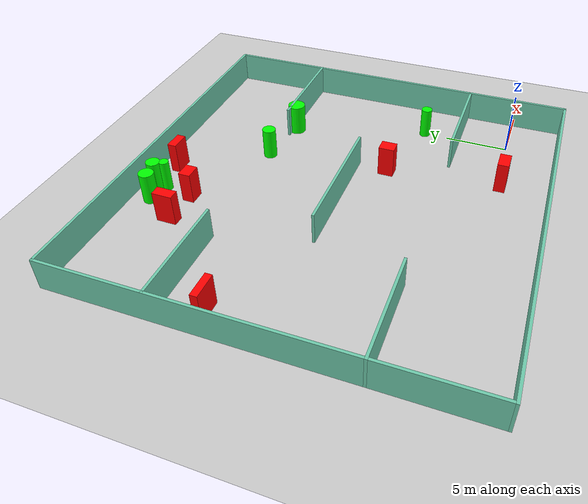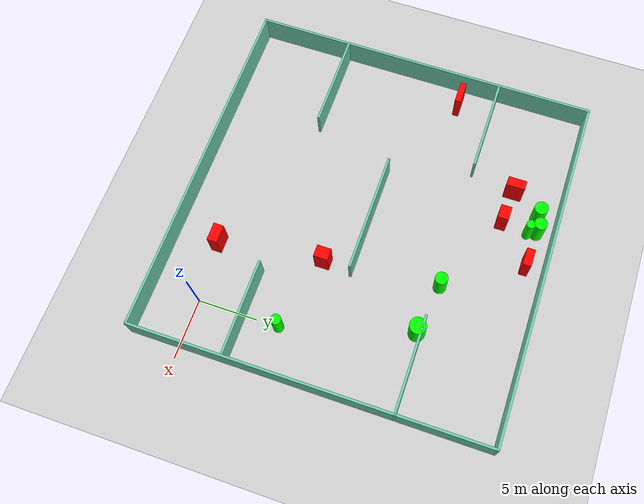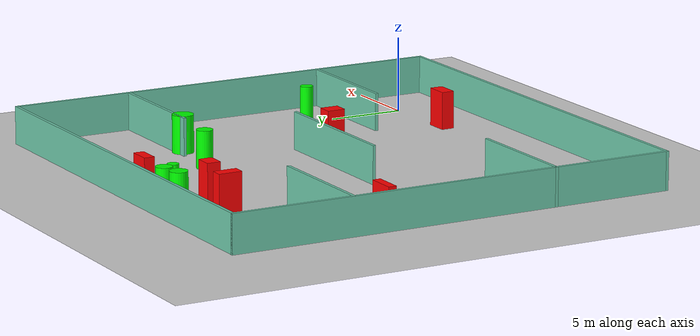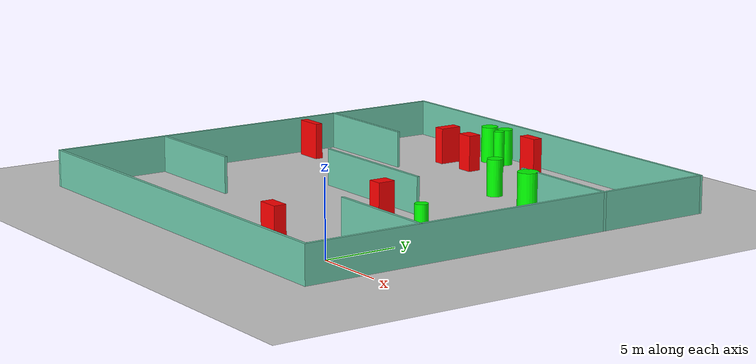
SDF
<sdf version="1.7">
 <world name="default">
  <light name="sun" type="directional">
   <pose>0 0 10 0 -0 0</pose>
   <diffuse>0.8 0.8 0.8 1</diffuse>
   <specular>0.2 0.2 0.2 1</specular>
   <attenuation>
    <range>1000</range>
    <constant>0.9</constant>
    <linear>0.01</linear>
    <quadratic>0.001</quadratic>
   </attenuation>
   <direction>-0.5 0.1 -0.9</direction>
   <spot><inner_angle>0</inner_angle><outer_angle>0</outer_angle><falloff>0</falloff></spot>
  </light>
  <model name="ground_plane">
   <static>1</static>
   <link name="link">
    <collision name="collision">
     <geometry><plane><normal>0 0 1</normal><size>100 100</size></plane></geometry>
     <surface>
      <contact><collide_bitmask>65535</collide_bitmask></contact>
      <friction><ode><mu>100</mu><mu2>50</mu2></ode></friction>
     </surface>
    </collision>
    <visual name="visual">
     <cast_shadows>0</cast_shadows>
     <geometry><plane><normal>0 0 1</normal><size>100 100</size></plane></geometry>
     <material>
      <script><uri>file://media/materials/scripts/gazebo.material</uri><name>Gazebo/Grey</name></script>
     </material>
    </visual>
   </link>
  </model>
  <gravity>0 0 -9.8</gravity>
  <magnetic_field>6e-06 2.3e-05 -4.2e-05</magnetic_field>
  <atmosphere type="adiabatic"/>
  <physics type="ode">
   <max_step_size>0.001</max_step_size>
   <real_time_factor>1</real_time_factor>
   <real_time_update_rate>1000</real_time_update_rate>
  </physics>
  <scene><ambient>0.4 0.4 0.4 1</ambient><background>0.7 0.7 0.7 1</background><shadows>1</shadows></scene>
  <spherical_coordinates>
   <surface_model>EARTH_WGS84</surface_model>
   <latitude_deg>0</latitude_deg>
   <longitude_deg>0</longitude_deg>
   <elevation>0</elevation>
   <heading_deg>0</heading_deg>
  </spherical_coordinates>
  <model name="my_base_walls">
   <link name="Wall_10">
    <collision name="Wall_10_Collision">
     <geometry><box><size>8.2 0.2 2.5</size></box></geometry>
     <pose>0 0 1.25 0 -0 0</pose>
    </collision>
    <visual name="Wall_10_Visual">
     <pose>0 0 1.25 0 -0 0</pose>
     <geometry><box><size>8.2 0.2 2.5</size></box></geometry>
     <material>
      <script><uri>file://media/materials/scripts/gazebo.material</uri><name>Gazebo/Grey</name></script>
      <ambient>0.435294 0.796078 0.67451 1</ambient>
     </material>
     <meta><layer>0</layer></meta>
    </visual>
    <pose>-11 -7 0 0 -0 0</pose>
   </link>
   <link name="Wall_12">
    <collision name="Wall_12_Collision">
     <geometry><box><size>8.2 0.2 2.5</size></box></geometry>
     <pose>0 0 1.25 0 -0 0</pose>
    </collision>
    <visual name="Wall_12_Visual">
     <pose>0 0 1.25 0 -0 0</pose>
     <geometry><box><size>8.2 0.2 2.5</size></box></geometry>
     <material>
      <script><uri>file://media/materials/scripts/gazebo.material</uri><name>Gazebo/Grey</name></script>
      <ambient>0.435294 0.796078 0.67451 1</ambient>
     </material>
     <meta><layer>0</layer></meta>
    </visual>
    <pose>-11 7 0 0 -0 0</pose>
   </link>
   <link name="Wall_14">
    <collision name="Wall_14_Collision">
     <geometry><box><size>8.2 0.2 2.5</size></box></geometry>
     <pose>0 0 1.25 0 -0 0</pose>
    </collision>
    <visual name="Wall_14_Visual">
     <pose>0 0 1.25 0 -0 0</pose>
     <geometry><box><size>8.2 0.2 2.5</size></box></geometry>
     <material>
      <script><uri>file://media/materials/scripts/gazebo.material</uri><name>Gazebo/Grey</name></script>
      <ambient>0.435294 0.796078 0.67451 1</ambient>
     </material>
     <meta><layer>0</layer></meta>
    </visual>
    <pose>11 7 0 0 -0 3.14159</pose>
   </link>
   <link name="Wall_16">
    <collision name="Wall_16_Collision">
     <geometry><box><size>10.2 0.2 2.5</size></box></geometry>
     <pose>0 0 1.25 0 -0 0</pose>
    </collision>
    <visual name="Wall_16_Visual">
     <pose>0 0 1.25 0 -0 0</pose>
     <geometry><box><size>10.2 0.2 2.5</size></box></geometry>
     <material>
      <script><uri>file://media/materials/scripts/gazebo.material</uri><name>Gazebo/Grey</name></script>
      <ambient>0.435294 0.796078 0.67451 1</ambient>
     </material>
     <meta><layer>0</layer></meta>
    </visual>
    <pose>0 0 0 0 -0 3.14159</pose>
   </link>
   <link name="Wall_2">
    <collision name="Wall_2_Collision">
     <geometry><box><size>30.2 0.2 2.5</size></box></geometry>
     <pose>0 0 1.25 0 -0 0</pose>
    </collision>
    <visual name="Wall_2_Visual">
     <pose>0 0 1.25 0 -0 0</pose>
     <geometry><box><size>30.2 0.2 2.5</size></box></geometry>
     <material>
      <script><uri>file://media/materials/scripts/gazebo.material</uri><name>Gazebo/Grey</name></script>
      <ambient>0.435294 0.796078 0.67451 1</ambient>
     </material>
     <meta><layer>0</layer></meta>
    </visual>
    <pose>0 -15 0 0 -0 3.14159</pose>
   </link>
   <link name="Wall_3">
    <collision name="Wall_3_Collision">
     <geometry><box><size>30.2 0.2 2.5</size></box></geometry>
     <pose>0 0 1.25 0 -0 0</pose>
    </collision>
    <visual name="Wall_3_Visual">
     <pose>0 0 1.25 0 -0 0</pose>
     <geometry><box><size>30.2 0.2 2.5</size></box></geometry>
     <material>
      <script><uri>file://media/materials/scripts/gazebo.material</uri><name>Gazebo/Grey</name></script>
      <ambient>0.435294 0.796078 0.67451 1</ambient>
     </material>
     <meta><layer>0</layer></meta>
    </visual>
    <pose>-15 0 0 0 -0 1.5708</pose>
   </link>
   <link name="Wall_4">
    <collision name="Wall_4_Collision">
     <geometry><box><size>30.2 0.2 2.5</size></box></geometry>
     <pose>0 0 1.25 0 -0 0</pose>
    </collision>
    <visual name="Wall_4_Visual">
     <pose>0 0 1.25 0 -0 0</pose>
     <geometry><box><size>30.2 0.2 2.5</size></box></geometry>
     <material>
      <script><uri>file://media/materials/scripts/gazebo.material</uri><name>Gazebo/Grey</name></script>
      <ambient>0.435294 0.796078 0.67451 1</ambient>
     </material>
     <meta><layer>0</layer></meta>
    </visual>
    <pose>0 15 0 0 -0 0</pose>
   </link>
   <link name="Wall_6">
    <collision name="Wall_6_Collision">
     <geometry><box><size>30.2 0.2 2.5</size></box></geometry>
     <pose>0 0 1.25 0 -0 0</pose>
    </collision>
    <visual name="Wall_6_Visual">
     <pose>0 0 1.25 0 -0 0</pose>
     <geometry><box><size>30.2 0.2 2.5</size></box></geometry>
     <material>
      <script><uri>file://media/materials/scripts/gazebo.material</uri><name>Gazebo/Grey</name></script>
      <ambient>0.435294 0.796078 0.67451 1</ambient>
     </material>
     <meta><layer>0</layer></meta>
    </visual>
    <pose>15 0 0 0 -0 1.5708</pose>
   </link>
   <link name="Wall_8">
    <collision name="Wall_8_Collision">
     <geometry><box><size>8.2 0.2 2.5</size></box></geometry>
     <pose>0 0 1.25 0 -0 0</pose>
    </collision>
    <visual name="Wall_8_Visual">
     <pose>0 0 1.25 0 -0 0</pose>
     <geometry><box><size>8.2 0.2 2.5</size></box></geometry>
     <material>
      <script><uri>file://media/materials/scripts/gazebo.material</uri><name>Gazebo/Grey</name></script>
      <ambient>0.435294 0.796078 0.67451 1</ambient>
     </material>
     <meta><layer>0</layer></meta>
    </visual>
    <pose>11 -7 0 0 -0 3.14159</pose>
   </link>
   <static>1</static>
   <pose>-11 11 0 0 -0 0</pose>
  </model>
  <model name="cylinder1">
   <static>1</static>
   <link name="link">
    <inertial>
     <mass>1</mass>
     <inertia><ixx>0.5</ixx><ixy>0</ixy><ixz>0</ixz><iyy>0.5</iyy><iyz>0</iyz><izz>1</izz></inertia>
    </inertial>
    <collision name="collision">
     <geometry><cylinder><radius>0.5349380488798134</radius><length>2.5</length></cylinder></geometry>
    </collision>
    <visual name="visual">
     <geometry><cylinder><radius>0.5349380488798134</radius><length>2.5</length></cylinder></geometry>
     <material>
      <ambient>0 1 0 1</ambient>
      <diffuse>0 1 0 1</diffuse>
      <specular>0.1 0.1 0.1 1</specular>
      <emissive>0 0 0 0</emissive>
     </material>
    </visual>
   </link>
   <pose>-7.338938116978566 18.271369648604164 1.25 0 0 0</pose>
  </model>
  <model name="cylinder2">
   <static>1</static>
   <link name="link">
    <inertial>
     <mass>1</mass>
     <inertia><ixx>0.5</ixx><ixy>0</ixy><ixz>0</ixz><iyy>0.5</iyy><iyz>0</iyz><izz>1</izz></inertia>
    </inertial>
    <collision name="collision">
     <geometry><cylinder><radius>0.6989915669513393</radius><length>2.5</length></cylinder></geometry>
    </collision>
    <visual name="visual">
     <geometry><cylinder><radius>0.6989915669513393</radius><length>2.5</length></cylinder></geometry>
     <material>
      <ambient>0 1 0 1</ambient>
      <diffuse>0 1 0 1</diffuse>
      <specular>0.1 0.1 0.1 1</specular>
      <emissive>0 0 0 0</emissive>
     </material>
    </visual>
   </link>
   <pose>-3.050903471336735 17.63504726836723 1.25 0 0 0</pose>
  </model>
  <model name="cylinder3">
   <static>1</static>
   <link name="link">
    <inertial>
     <mass>1</mass>
     <inertia><ixx>0.5</ixx><ixy>0</ixy><ixz>0</ixz><iyy>0.5</iyy><iyz>0</iyz><izz>1</izz></inertia>
    </inertial>
    <collision name="collision">
     <geometry><cylinder><radius>0.5403044589288205</radius><length>2.5</length></cylinder></geometry>
    </collision>
    <visual name="visual">
     <geometry><cylinder><radius>0.5403044589288205</radius><length>2.5</length></cylinder></geometry>
     <material>
      <ambient>0 1 0 1</ambient>
      <diffuse>0 1 0 1</diffuse>
      <specular>0.1 0.1 0.1 1</specular>
      <emissive>0 0 0 0</emissive>
     </material>
    </visual>
   </link>
   <pose>-14.410141786819135 24.643192360807234 1.25 0 0 0</pose>
  </model>
  <model name="cylinder4">
   <static>1</static>
   <link name="link">
    <inertial>
     <mass>1</mass>
     <inertia><ixx>0.5</ixx><ixy>0</ixy><ixz>0</ixz><iyy>0.5</iyy><iyz>0</iyz><izz>1</izz></inertia>
    </inertial>
    <collision name="collision">
     <geometry><cylinder><radius>0.3735398042431691</radius><length>2.5</length></cylinder></geometry>
    </collision>
    <visual name="visual">
     <geometry><cylinder><radius>0.3735398042431691</radius><length>2.5</length></cylinder></geometry>
     <material>
      <ambient>0 1 0 1</ambient>
      <diffuse>0 1 0 1</diffuse>
      <specular>0.1 0.1 0.1 1</specular>
      <emissive>0 0 0 0</emissive>
     </material>
    </visual>
   </link>
   <pose>-14.103482653529397 23.88353404246665 1.25 0 0 0</pose>
  </model>
  <model name="cylinder5">
   <static>1</static>
   <link name="link">
    <inertial>
     <mass>1</mass>
     <inertia><ixx>0.5</ixx><ixy>0</ixy><ixz>0</ixz><iyy>0.5</iyy><iyz>0</iyz><izz>1</izz></inertia>
    </inertial>
    <collision name="collision">
     <geometry><cylinder><radius>0.5798773658588701</radius><length>2.5</length></cylinder></geometry>
    </collision>
    <visual name="visual">
     <geometry><cylinder><radius>0.5798773658588701</radius><length>2.5</length></cylinder></geometry>
     <material>
      <ambient>0 1 0 1</ambient>
      <diffuse>0 1 0 1</diffuse>
      <specular>0.1 0.1 0.1 1</specular>
      <emissive>0 0 0 0</emissive>
     </material>
    </visual>
   </link>
   <pose>-15.785373563886544 24.344304072712863 1.25 0 0 0</pose>
  </model>
  <model name="cylinder6">
   <static>1</static>
   <link name="link">
    <inertial>
     <mass>1</mass>
     <inertia><ixx>0.5</ixx><ixy>0</ixy><ixz>0</ixz><iyy>0.5</iyy><iyz>0</iyz><izz>1</izz></inertia>
    </inertial>
    <collision name="collision">
     <geometry><cylinder><radius>0.4318602547130299</radius><length>2.5</length></cylinder></geometry>
    </collision>
    <visual name="visual">
     <geometry><cylinder><radius>0.4318602547130299</radius><length>2.5</length></cylinder></geometry>
     <material>
      <ambient>0 1 0 1</ambient>
      <diffuse>0 1 0 1</diffuse>
      <specular>0.1 0.1 0.1 1</specular>
      <emissive>0 0 0 0</emissive>
     </material>
    </visual>
   </link>
   <pose>0.009490963301548305 6.974189741333216 1.25 0 0 0</pose>
  </model>
  <model name="box1">
   <static>1</static>
   <link name="link">
    <inertial>
     <mass>1</mass>
     <inertia><ixx>0.083</ixx><ixy>0</ixy><ixz>0</ixz><iyy>0.083</iyy><iyz>0</iyz><izz>0.083</izz></inertia>
    </inertial>
    <collision name="collision">
     <geometry><box><size>0.7983666049522877 1.5600971816219118 2.5</size></box></geometry>
    </collision>
    <visual name="visual">
     <geometry><box><size>0.7983666049522877 1.5600971816219118 2.5</size></box></geometry>
     <material>
      <ambient>1 0 0 1</ambient>
      <diffuse>1 0 0 1</diffuse>
      <specular>0.1 0.1 0.1 1</specular>
      <emissive>0 0 0 0</emissive>
     </material>
    </visual>
    <sensor name="my_contact" type="contact">
     <contact><collision>box_collision</collision><topic>__default_topic__</topic></contact>
    </sensor>
   </link>
   <pose>-17.333444494674453 21.8411564378991 1.25 0 0 0</pose>
  </model>
  <model name="box2">
   <static>1</static>
   <link name="link">
    <inertial>
     <mass>1</mass>
     <inertia><ixx>0.083</ixx><ixy>0</ixy><ixz>0</ixz><iyy>0.083</iyy><iyz>0</iyz><izz>0.083</izz></inertia>
    </inertial>
    <collision name="collision">
     <geometry><box><size>1.932765296159615 0.5324397830676921 2.5</size></box></geometry>
    </collision>
    <visual name="visual">
     <geometry><box><size>1.932765296159615 0.5324397830676921 2.5</size></box></geometry>
     <material>
      <ambient>1 0 0 1</ambient>
      <diffuse>1 0 0 1</diffuse>
      <specular>0.1 0.1 0.1 1</specular>
      <emissive>0 0 0 0</emissive>
     </material>
    </visual>
    <sensor name="my_contact" type="contact">
     <contact><collision>box_collision</collision><topic>__default_topic__</topic></contact>
    </sensor>
   </link>
   <pose>-24.292120347446957 14.954480673177983 1.25 0 0 0</pose>
  </model>
  <model name="box3">
   <static>1</static>
   <link name="link">
    <inertial>
     <mass>1</mass>
     <inertia><ixx>0.083</ixx><ixy>0</ixy><ixz>0</ixz><iyy>0.083</iyy><iyz>0</iyz><izz>0.083</izz></inertia>
    </inertial>
    <collision name="collision">
     <geometry><box><size>1.1862656609765496 0.9128662891465033 2.5</size></box></geometry>
    </collision>
    <visual name="visual">
     <geometry><box><size>1.1862656609765496 0.9128662891465033 2.5</size></box></geometry>
     <material>
      <ambient>1 0 0 1</ambient>
      <diffuse>1 0 0 1</diffuse>
      <specular>0.1 0.1 0.1 1</specular>
      <emissive>0 0 0 0</emissive>
     </material>
    </visual>
    <sensor name="my_contact" type="contact">
     <contact><collision>box_collision</collision><topic>__default_topic__</topic></contact>
    </sensor>
   </link>
   <pose>-14.472646001545714 21.585545795506704 1.25 0 0 0</pose>
  </model>
  <model name="box4">
   <static>1</static>
   <link name="link">
    <inertial>
     <mass>1</mass>
     <inertia><ixx>0.083</ixx><ixy>0</ixy><ixz>0</ixz><iyy>0.083</iyy><iyz>0</iyz><izz>0.083</izz></inertia>
    </inertial>
    <collision name="collision">
     <geometry><box><size>1.004778036490101 1.2174901844823804 2.5</size></box></geometry>
    </collision>
    <visual name="visual">
     <geometry><box><size>1.004778036490101 1.2174901844823804 2.5</size></box></geometry>
     <material>
      <ambient>1 0 0 1</ambient>
      <diffuse>1 0 0 1</diffuse>
      <specular>0.1 0.1 0.1 1</specular>
      <emissive>0 0 0 0</emissive>
     </material>
    </visual>
    <sensor name="my_contact" type="contact">
     <contact><collision>box_collision</collision><topic>__default_topic__</topic></contact>
    </sensor>
   </link>
   <pose>-6.35864493294941 8.536654015492877 1.25 0 0 0</pose>
  </model>
  <model name="box5">
   <static>1</static>
   <link name="link">
    <inertial>
     <mass>1</mass>
     <inertia><ixx>0.083</ixx><ixy>0</ixy><ixz>0</ixz><iyy>0.083</iyy><iyz>0</iyz><izz>0.083</izz></inertia>
    </inertial>
    <collision name="collision">
     <geometry><box><size>1.4906857649109853 0.6900716702840013 2.5</size></box></geometry>
    </collision>
    <visual name="visual">
     <geometry><box><size>1.4906857649109853 0.6900716702840013 2.5</size></box></geometry>
     <material>
      <ambient>1 0 0 1</ambient>
      <diffuse>1 0 0 1</diffuse>
      <specular>0.1 0.1 0.1 1</specular>
      <emissive>0 0 0 0</emissive>
     </material>
    </visual>
    <sensor name="my_contact" type="contact">
     <contact><collision>box_collision</collision><topic>__default_topic__</topic></contact>
    </sensor>
   </link>
   <pose>-11.287674617195114 24.449913212081576 1.25 0 0 0</pose>
  </model>
  <model name="box6">
   <static>1</static>
   <link name="link">
    <inertial>
     <mass>1</mass>
     <inertia><ixx>0.083</ixx><ixy>0</ixy><ixz>0</ixz><iyy>0.083</iyy><iyz>0</iyz><izz>0.083</izz></inertia>
    </inertial>
    <collision name="collision">
     <geometry><box><size>1.5195873672487366 0.8615697712150323 2.5</size></box></geometry>
    </collision>
    <visual name="visual">
     <geometry><box><size>1.5195873672487366 0.8615697712150323 2.5</size></box></geometry>
     <material>
      <ambient>1 0 0 1</ambient>
      <diffuse>1 0 0 1</diffuse>
      <specular>0.1 0.1 0.1 1</specular>
      <emissive>0 0 0 0</emissive>
     </material>
    </visual>
    <sensor name="my_contact" type="contact">
     <contact><collision>box_collision</collision><topic>__default_topic__</topic></contact>
    </sensor>
   </link>
   <pose>-5.198953858760417 -0.3060355540994535 1.25 0 0 0</pose>
  </model>
 </world>
</sdf>
